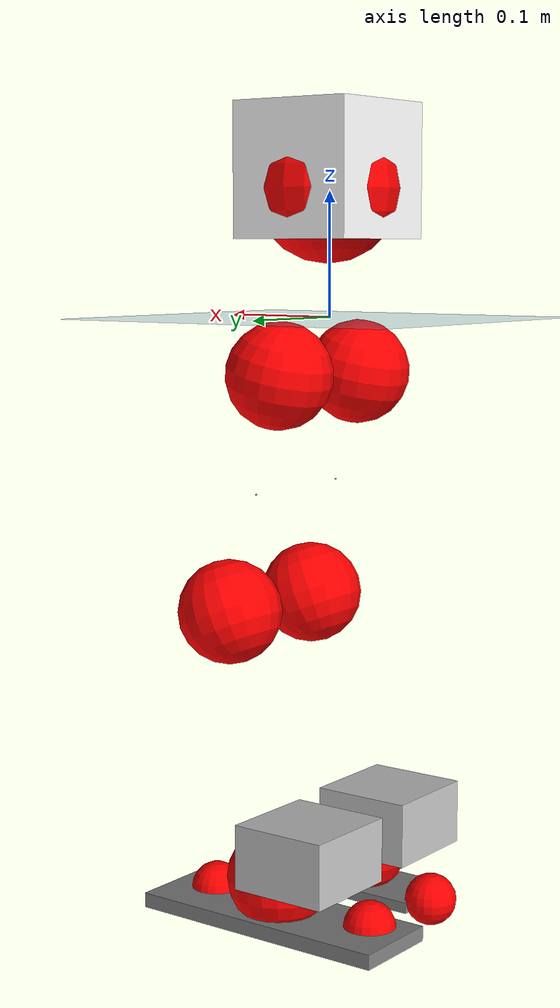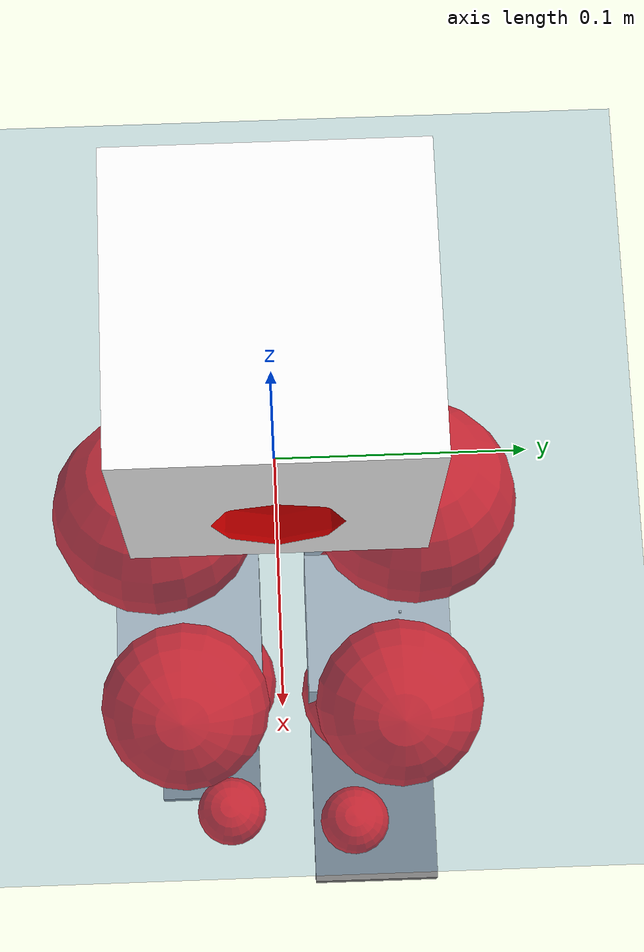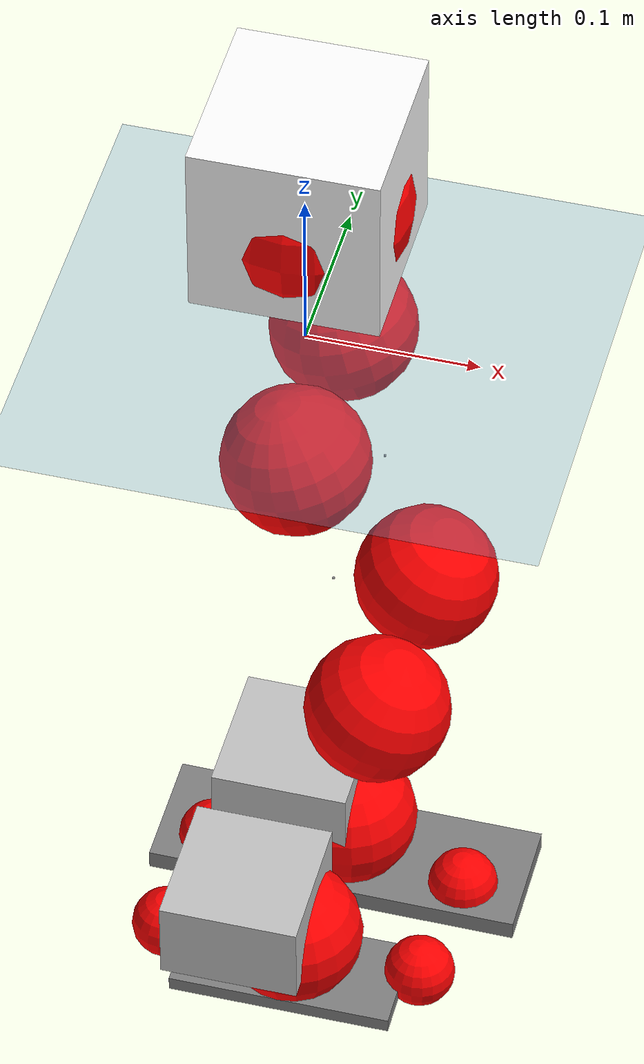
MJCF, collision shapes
<mujoco model="pi_12dof_release_v1">
  <compiler angle="radian" assetdir="assets" balanceinertia="true" inertiafromgeom="false"/>

  <option timestep="0.005" density="1.2" viscosity="2e-05"/>

  <size nkey="1"/>

  <visual>
    <quality shadowsize="8192"/>
    <map shadowclip="0.5"/>
  </visual>

  <default>
    <default class="/">
      <joint armature="0.01" damping="0.01" frictionloss="0.01"/>
      <geom contype="0" conaffinity="0" group="1" solref="-1000 -80"/>
      <site size="0.01 0.005 0.005" group="5"/>
      <general forcelimited="true" biastype="affine" gainprm="20" biasprm="0 -20 -0.5"/>
      <default class="foot">
        <geom size="0.0845 0.036 0.005" type="box" condim="6" group="4" priority="1" friction="0.9 0.2 0.2" solimp="0.015 1 0.005"/>
      </default>
      <default class="reward_collision_sphere">
        <geom group="5" rgba="1 0 0 1"/>
      </default>
    </default>
  </default>

  <asset>
    <texture type="skybox" colorspace="auto" name="//unnamed_texture_0" builtin="gradient" rgb1="0.95 0.95 0.95" rgb2="0.95 0.95 0.95" width="100" height="600"/>
    <texture type="2d" colorspace="auto" name="texplane" builtin="checker" rgb1="0.345 0.575 0.748" rgb2="0.345 0.575 0.748" markrgb="1 1 1" width="512" height="512"/>
    <material name="MatPlane" class="/" texture="texplane" texuniform="true" texrepeat="2 2" specular="0.9"/>
    <mesh name="baselink_1" class="/" file="baselink_1.STL"/>
    <mesh name="r_hip_pitch_link" class="/" file="r_hip_pitch_link.STL"/>
    <mesh name="r_hip_roll_link" class="/" file="r_hip_roll_link.STL"/>
    <mesh name="r_thigh_link" class="/" file="r_thigh_link.STL"/>
    <mesh name="r_calf_link" class="/" file="r_calf_link.STL"/>
    <mesh name="r_ankle_pitch_link" class="/" file="r_ankle_pitch_link.STL"/>
    <mesh name="r_ankle_roll_link" class="/" file="r_ankle_roll_link.STL"/>
    <mesh name="l_hip_pitch_link" class="/" file="l_hip_pitch_link.STL"/>
    <mesh name="l_hip_roll_link" class="/" file="l_hip_roll_link.STL"/>
    <mesh name="l_thigh_link" class="/" file="l_thigh_link.STL"/>
    <mesh name="l_calf_link" class="/" file="l_calf_link.STL"/>
    <mesh name="l_ankle_pitch_link" class="/" file="l_ankle_pitch_link.STL"/>
    <mesh name="l_ankle_roll_link" class="/" file="l_ankle_roll_link.STL"/>
  </asset>

  <worldbody>
    <geom name="floor" class="/" size="100 100 0.125" type="plane" group="0" material="MatPlane"/>
    <light name="toplight_shadow" class="/" pos="0 0 5" dir="0.0990148 0.0990148 -0.990148" type="directional" ambient="0.04 0.04 0.04" diffuse="0.55 0.55 0.55" specular="0.12 0.12 0.12"/>
    <light name="toplight_fill" class="/" pos="0 0 5" dir="0.0990148 0.0990148 -0.990148" type="directional" castshadow="false" ambient="0.04 0.04 0.04" diffuse="0.3 0.3 0.3" specular="0.08 0.08 0.08"/>
    <body name="trunk" pos="0.00180833 0.00064512 0.00122517" quat="0.999999 -0.000570358 -0.00054609 0.000665835">
      <inertial pos="0.00510466 0.00342698 0.0592787" quat="0.700031 0.00626406 0.0149086 0.713929" mass="2.72354" diaginertia="0.0207603 0.000740793 0.023656"/>
      <joint name="//unnamed_joint_0" type="free"/>
      <geom name="//unnamed_geom_1" class="/" type="mesh" density="0" rgba="1 1 1 1" mesh="baselink_1"/>
      <geom name="//unnamed_geom_2" class="/" size="0.0536603 0.0536603 0.0536603" pos="0 0 0.11489" type="box" rgba="1 1 1 1"/>
      <geom name="//unnamed_geom_3" class="reward_collision_sphere" size="0.0590263" pos="0 0 0.100529"/>
      <site name="imu" class="/" pos="0.0279168 -0.0113965 -0.0178318" size="0.0107321"/>
      <camera name="track" class="/" pos="0 -1.22575 0" quat="0.707107 0.707107 0 0" mode="trackcom"/>
      <camera name="ego_camera" class="/" pos="0.0877957 0 0.258504" quat="-0.5 -0.5 0.5 0.5"/>
      <body name="r_hip_pitch_link" pos="0.00328451 -0.0154819 -0.0481092" quat="0.992177 -0.000153928 -0.124838 0.00027483">
        <inertial pos="-0.00266529 -0.0349655 -0.00114919" quat="-0.0198655 0.706206 -0.0279089 0.707178" mass="0.47574" diaginertia="0.000249289 8.42421e-06 0.000514813"/>
        <joint name="r_hip_pitch_joint" class="/" pos="0 0 0" axis="0.0257532 -0.999546 0.0156543" range="-1.75028 1.33898" armature="0.0101248" damping="0.0337359" frictionloss="0.00974165"/>
        <geom name="//unnamed_geom_4" class="/" type="mesh" density="0" rgba="0.75294 0.75294 0.75294 1" mesh="r_hip_pitch_link"/>
        <geom name="//unnamed_geom_5" class="/" size="0.000536603 0.000536603 0.000536603" type="box" rgba="0.75294 0.75294 0.75294 1"/>
        <body name="r_hip_roll_link" pos="0.0026313 -0.0360446 4.42618e-05" quat="1 -0.000233519 -0.000113886 0.000108322">
          <inertial pos="-0.000249268 -0.000506192 -0.0915363" quat="0.710228 -0.0872726 -0.0854705 0.693293" mass="0.486481" diaginertia="0.000785865 2.4405e-05 0.000774311"/>
          <joint name="r_hip_roll_joint" class="/" pos="0 0 0" axis="-0.999633 -0.00652637 -0.0263005" range="-0.042764 0.528225" armature="0.00990808" damping="9.9682e-05" frictionloss="0.00983001"/>
          <geom name="//unnamed_geom_6" class="/" type="mesh" density="0" rgba="0.75294 0.75294 0.75294 1" mesh="r_hip_roll_link"/>
          <geom name="//unnamed_geom_7" class="/" size="0.000536603 0.000536603 0.000536603" type="box" rgba="0.75294 0.75294 0.75294 1"/>
          <geom name="//unnamed_geom_8" class="reward_collision_sphere" size="0.0429282"/>
          <body name="r_thigh_link" pos="-0.00260741 0.00254347 -0.0939821" quat="0.999999 -0.000739259 0.000764264 0.000800959">
            <inertial pos="-0.00130213 0.00140076 -0.0707794" quat="0.730574 0.682806 0.000954985 -0.00608397" mass="0.137364" diaginertia="0.000274953 8.24043e-06 0.000341967"/>
            <joint name="r_thigh_joint" class="/" pos="0 0 0" axis="0.000181671 -0.00205619 -0.999998" range="-0.267184 0.620747" armature="0.0101147" damping="0.00642298" frictionloss="0.0120124"/>
            <geom name="//unnamed_geom_9" class="/" type="mesh" density="0" rgba="0.75294 0.75294 0.75294 1" mesh="r_thigh_link"/>
            <geom name="//unnamed_geom_10" class="/" size="0.000536603 0.000536603 0.000536603" type="box" rgba="0.75294 0.75294 0.75294 1"/>
            <body name="r_calf_link" pos="0.000967196 -0.000935204 -0.103601" quat="0.947668 -2.7986e-05 0.319256 -0.000605239">
              <inertial pos="-0.00389042 -0.000981097 -0.0992041" quat="0.999985 -0.00344998 -0.000604116 0.00423342" mass="0.970484" diaginertia="0.00758544 0.000300983 0.0010581"/>
              <joint name="r_calf_joint" class="/" pos="0 0 0" axis="0.00512958 -0.999945 -0.00916088" range="-1.6865 0.652295" armature="0.0112721" damping="0.00263154" frictionloss="0.0103513"/>
              <geom name="//unnamed_geom_11" class="/" type="mesh" density="0" rgba="0.75294 0.75294 0.75294 1" mesh="r_calf_link"/>
              <geom name="//unnamed_geom_12" class="/" size="0.000536603 0.000536603 0.000536603" type="box" rgba="0.75294 0.75294 0.75294 1"/>
              <geom name="//unnamed_geom_13" class="reward_collision_sphere" size="0.0429282"/>
              <body name="r_ankle_pitch_link" pos="-0.000161787 -0.00442967 -0.201839" quat="0.980005 -0.000343102 -0.198973 0.000179501">
                <inertial pos="0.00587154 0.00460836 -0.00202939" quat="-0.0111705 0.708216 -0.0114367 0.705814" mass="0.235668" diaginertia="0.000709437 1.9516e-05 0.000758997"/>
                <joint name="r_ankle_pitch_joint" class="/" pos="0 0 0" axis="0.00816968 -0.999905 0.0111144" stiffness="0.00508389" range="-1.34921 0.553354" armature="0.00933819" damping="0.0224601" frictionloss="0.0109041"/>
                <geom name="//unnamed_geom_14" class="/" type="mesh" density="0" rgba="0.75294 0.75294 0.75294 1" mesh="r_ankle_pitch_link"/>
                <geom name="//unnamed_geom_15" class="/" size="0.041855 0.0429282 0.0268301" type="box" rgba="0.75294 0.75294 0.75294 1"/>
                <body name="r_ankle_roll_link" pos="0.0847407 0.00804568 0.000534815" quat="1 -0.00021885 -0.000136688 0.000662964">
                  <inertial pos="-0.0269657 -0.000260423 -0.0251332" quat="0.560116 0.430485 0.434062 0.559055" mass="0.625145" diaginertia="0.00266467 9.23357e-05 0.00176471"/>
                  <joint name="r_ankle_roll_joint" class="/" pos="0 0 0" axis="-0.999954 -0.00337509 0.00901442" stiffness="0.0061712" range="-0.134843 0.184008" armature="0.0118441" damping="0.0228306" frictionloss="0.00899909"/>
                  <geom name="//unnamed_geom_16" class="/" type="mesh" density="0" rgba="0.75294 0.75294 0.75294 1" mesh="r_ankle_roll_link"/>
                  <geom name="//unnamed_geom_17" class="/" type="mesh" rgba="0.75294 0.75294 0.75294 1" mesh="r_ankle_roll_link"/>
                  <geom name="right_foot" class="foot" size="0.0680434 0.0305182 0.00464473" pos="-0.0597011 0 -0.0631898"/>
                  <geom name="//unnamed_geom_19" class="reward_collision_sphere" size="0.0429282" pos="-0.0585305 0 -0.0287226"/>
                  <geom name="//unnamed_geom_20" class="reward_collision_sphere" size="0.0214641" pos="0.0175591 0.0122575 -0.0574452"/>
                  <geom name="//unnamed_geom_21" class="reward_collision_sphere" size="0.0214641" pos="-0.140473 0.0122575 -0.0574452"/>
                  <site name="right_foot" class="foot" pos="-0.0597011 0 -0.0631898" size="0.0107321"/>
                </body>
              </body>
            </body>
          </body>
        </body>
      </body>
      <body name="l_hip_pitch_link" pos="0.00498374 0.0159007 -0.0450568" quat="0.992265 2.7845e-05 -0.124133 -0.000630495">
        <inertial pos="0.00224863 0.0291672 0.000387556" quat="-0.0378649 0.704554 0.0292232 0.708036" mass="0.48881" diaginertia="0.000286252 8.83409e-06 0.000667489"/>
        <joint name="l_hip_pitch_joint" class="/" pos="0 0 0" axis="0.00876185 0.999941 -0.00638562" range="-1.16993 1.81257" armature="0.008128" damping="0.0330232" frictionloss="0.00942887"/>
        <geom name="//unnamed_geom_22" class="/" type="mesh" density="0" rgba="0.75294 0.75294 0.75294 1" mesh="l_hip_pitch_link"/>
        <geom name="//unnamed_geom_23" class="/" size="0.000536603 0.000536603 0.000536603" type="box" rgba="0.75294 0.75294 0.75294 1"/>
        <body name="l_hip_roll_link" pos="0.00036395 0.0410664 -0.000154363" quat="1 -2.33177e-05 8.66974e-05 -0.000104453">
          <inertial pos="-0.00267559 -0.00234633 -0.0905582" quat="0.701455 -0.0766707 -0.0702566 0.705087" mass="0.479884" diaginertia="0.00073485 2.41792e-05 0.000808706"/>
          <joint name="l_hip_roll_joint" class="/" pos="0 0 0" axis="-0.999652 -0.00372789 -0.0261183" stiffness="0.00926747" range="-0.608461 0.0999956" armature="0.0118262" damping="0" frictionloss="0.0126445"/>
          <geom name="//unnamed_geom_24" class="/" type="mesh" density="0" rgba="0.75294 0.75294 0.75294 1" mesh="l_hip_roll_link"/>
          <geom name="//unnamed_geom_25" class="/" size="0.000536603 0.000536603 0.000536603" type="box" rgba="0.75294 0.75294 0.75294 1"/>
          <geom name="//unnamed_geom_26" class="reward_collision_sphere" size="0.0429282"/>
          <body name="l_thigh_link" pos="0.000465215 -0.00184708 -0.0995335" quat="1 0.000201189 -0.000197742 -0.000662616">
            <inertial pos="-7.03616e-05 -0.00227513 -0.0700175" quat="0.658713 0.75204 0.000371235 -0.0230814" mass="0.137606" diaginertia="0.000277158 8.3329e-06 0.000375579"/>
            <joint name="l_thigh_joint" class="/" pos="0 0 0" axis="-0.00762105 0.00332982 -0.999965" range="-0.598507 0.285564" armature="0.0110651" damping="0.0219955" frictionloss="0.010431"/>
            <geom name="//unnamed_geom_27" class="/" type="mesh" density="0" rgba="0.75294 0.75294 0.75294 1" mesh="l_thigh_link"/>
            <geom name="//unnamed_geom_28" class="/" size="0.000536603 0.000536603 0.000536603" type="box" rgba="0.75294 0.75294 0.75294 1"/>
            <body name="l_calf_link" pos="-0.000212627 0.00383101 -0.100886" quat="0.947437 -0.000191998 0.31994 -0.000904407">
              <inertial pos="0.00456068 0.00147151 -0.103535" quat="0.999892 0.000677987 -0.008443 0.0119739" mass="1.00182" diaginertia="0.0076138 0.000299069 0.0011247"/>
              <joint name="l_calf_joint" class="/" pos="0 0 0" axis="0.00212105 0.999993 -0.00292358" range="-0.618222 1.78086" armature="0.0125207" damping="0.0128801" frictionloss="0.0127093"/>
              <geom name="//unnamed_geom_29" class="/" type="mesh" density="0" rgba="0.75294 0.75294 0.75294 1" mesh="l_calf_link"/>
              <geom name="//unnamed_geom_30" class="/" size="0.000536603 0.000536603 0.000536603" type="box" rgba="0.75294 0.75294 0.75294 1"/>
              <geom name="//unnamed_geom_31" class="reward_collision_sphere" size="0.0429282"/>
              <body name="l_ankle_pitch_link" pos="0.000840292 -0.00122614 -0.205492" quat="0.980058 0.000361074 -0.198713 0.00060988">
                <inertial pos="0.00417936 -0.00335674 0.00193986" quat="-0.00247388 0.708086 0.00130246 0.706121" mass="0.249155" diaginertia="0.000756421 2.08229e-05 0.000811739"/>
                <joint name="l_ankle_pitch_joint" class="/" pos="0 0 0" axis="-0.0088124 0.999952 -0.0042626" range="-0.520609 1.27574" armature="0.010393" damping="0.0137047" frictionloss="0.00722218"/>
                <geom name="//unnamed_geom_32" class="/" type="mesh" density="0" rgba="0.75294 0.75294 0.75294 1" mesh="l_ankle_pitch_link"/>
                <geom name="//unnamed_geom_33" class="/" size="0.041855 0.0429282 0.0268301" type="box" rgba="0.75294 0.75294 0.75294 1"/>
                <body name="l_ankle_roll_link" pos="0.091796 -0.00377501 0.00200961" quat="1 -0.000197935 -0.000152962 9.2451e-05">
                  <inertial pos="-0.0298896 -0.000152719 -0.0200058" quat="0.557931 0.435536 0.444066 0.549388" mass="0.671622" diaginertia="0.00253507 8.78748e-05 0.00178383"/>
                  <joint name="l_ankle_roll_joint" class="/" pos="0 0 0" axis="-0.999952 -0.00270593 -0.00942191" stiffness="0.00537141" range="-0.138971 0.15289" armature="0.00964383" damping="0.0149398" frictionloss="0.0134138"/>
                  <geom name="//unnamed_geom_34" class="/" type="mesh" density="0" rgba="0.75294 0.75294 0.75294 1" mesh="l_ankle_roll_link"/>
                  <geom name="//unnamed_geom_35" class="/" type="mesh" rgba="0.75294 0.75294 0.75294 1" mesh="l_ankle_roll_link"/>
                  <geom name="left_foot" class="foot" size="0.11477 0.0379927 0.00621768" pos="-0.0597011 0 -0.0631898"/>
                  <geom name="//unnamed_geom_37" class="reward_collision_sphere" size="0.0429282" pos="-0.0585305 0 -0.0287226"/>
                  <geom name="//unnamed_geom_38" class="reward_collision_sphere" size="0.0214641" pos="0.0175591 -0.0122575 -0.0574452"/>
                  <geom name="//unnamed_geom_39" class="reward_collision_sphere" size="0.0214641" pos="-0.140473 -0.0122575 -0.0574452"/>
                  <site name="left_foot" class="foot" pos="-0.0597011 0 -0.0631898" size="0.0107321"/>
                </body>
              </body>
            </body>
          </body>
        </body>
      </body>
    </body>
  </worldbody>

  <contact>
    <pair class="/" geom1="floor" geom2="right_foot" name="//unnamed_contact_1"/>
    <pair class="/" geom1="floor" geom2="left_foot" name="//unnamed_contact_0"/>
  </contact>

  <actuator>
    <general name="r_hip_pitch_joint" class="/" joint="r_hip_pitch_joint" forcerange="-24.106 24.106" gainprm="20.5005" biasprm="0 -20.5005 -0.49273"/>
    <general name="r_hip_roll_joint" class="/" joint="r_hip_roll_joint" forcerange="-24.9945 24.9945" gainprm="20.5005" biasprm="0 -20.5005 -0.49273"/>
    <general name="r_thigh_joint" class="/" joint="r_thigh_joint" forcerange="-21.0192 21.0192" gainprm="20.5005" biasprm="0 -20.5005 -0.49273"/>
    <general name="r_calf_joint" class="/" joint="r_calf_joint" forcerange="-22.3373 22.3373" gainprm="20.5005" biasprm="0 -20.5005 -0.49273"/>
    <general name="r_ankle_pitch_joint" class="/" joint="r_ankle_pitch_joint" forcerange="-24.7766 24.7766" gainprm="20.5005" biasprm="0 -20.5005 -0.49273"/>
    <general name="r_ankle_roll_joint" class="/" joint="r_ankle_roll_joint" forcerange="-23.0204 23.0204" gainprm="20.5005" biasprm="0 -20.5005 -0.49273"/>
    <general name="l_hip_pitch_joint" class="/" joint="l_hip_pitch_joint" forcerange="-20.7512 20.7512" gainprm="20.5005" biasprm="0 -20.5005 -0.49273"/>
    <general name="l_hip_roll_joint" class="/" joint="l_hip_roll_joint" forcerange="-22.5513 22.5513" gainprm="20.5005" biasprm="0 -20.5005 -0.49273"/>
    <general name="l_thigh_joint" class="/" joint="l_thigh_joint" forcerange="-20.6148 20.6148" gainprm="20.5005" biasprm="0 -20.5005 -0.49273"/>
    <general name="l_calf_joint" class="/" joint="l_calf_joint" forcerange="-22.9199 22.9199" gainprm="20.5005" biasprm="0 -20.5005 -0.49273"/>
    <general name="l_ankle_pitch_joint" class="/" joint="l_ankle_pitch_joint" forcerange="-23.345 23.345" gainprm="20.5005" biasprm="0 -20.5005 -0.49273"/>
    <general name="l_ankle_roll_joint" class="/" joint="l_ankle_roll_joint" forcerange="-25.3911 25.3911" gainprm="20.5005" biasprm="0 -20.5005 -0.49273"/>
  </actuator>

  <sensor>
    <gyro site="imu" name="imu_angular_velocity"/>
    <velocimeter site="imu" name="imu_linear_velocity"/>
    <framelinvel objtype="site" objname="left_foot" name="left_foot_global_linear_velocity"/>
    <framelinvel objtype="site" objname="right_foot" name="right_foot_global_linear_velocity"/>
  </sensor>

  <keyframe>
    <key name="home" qpos="0 0 0.291 1 0 0 0 0.4 0 0 -0.8 0.4 0 -0.4 0 0 0.8 -0.4 0"/>
  </keyframe>
</mujoco>
